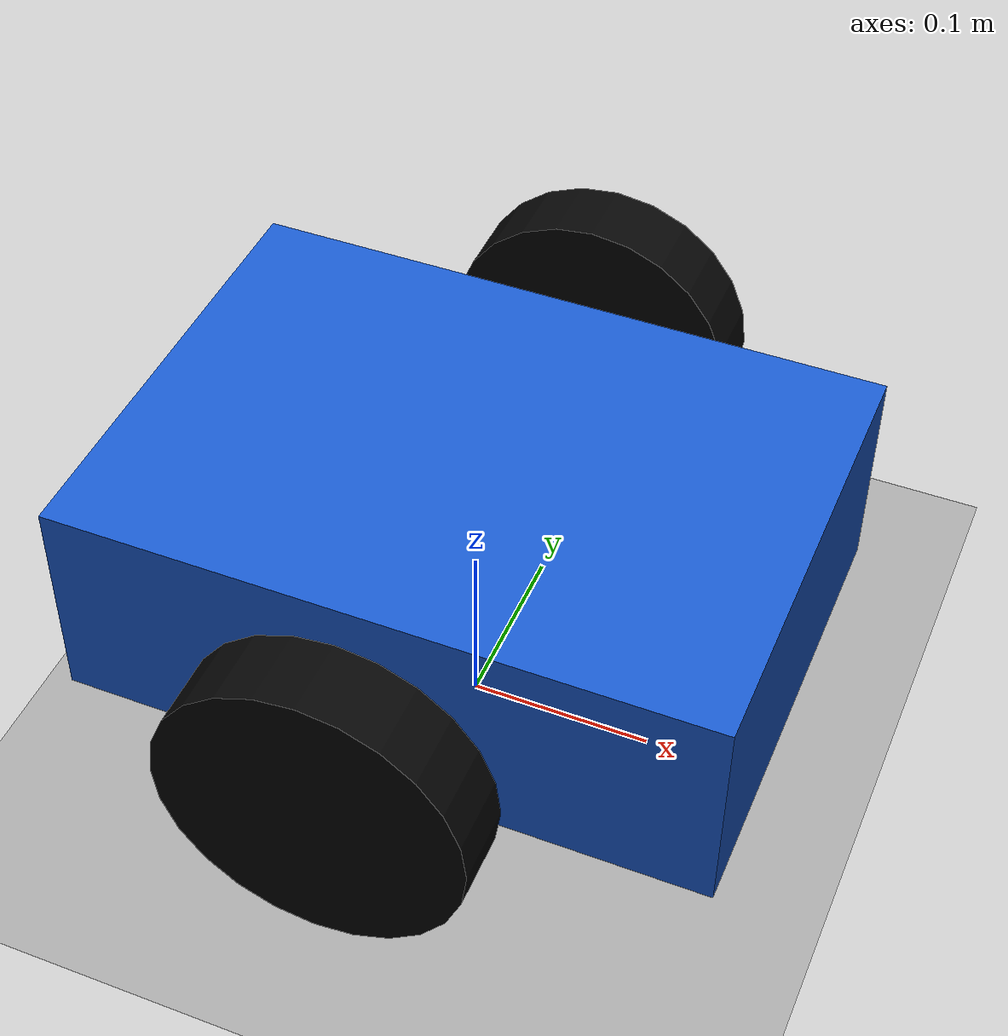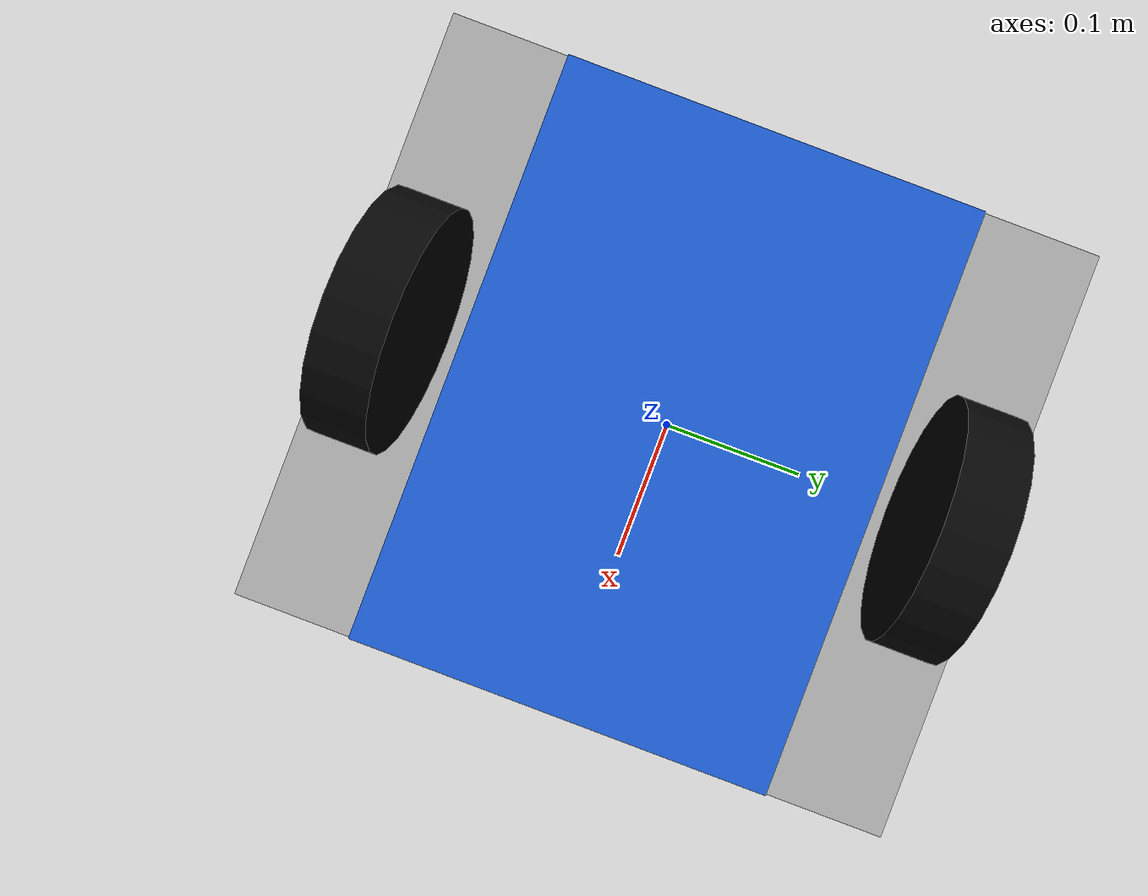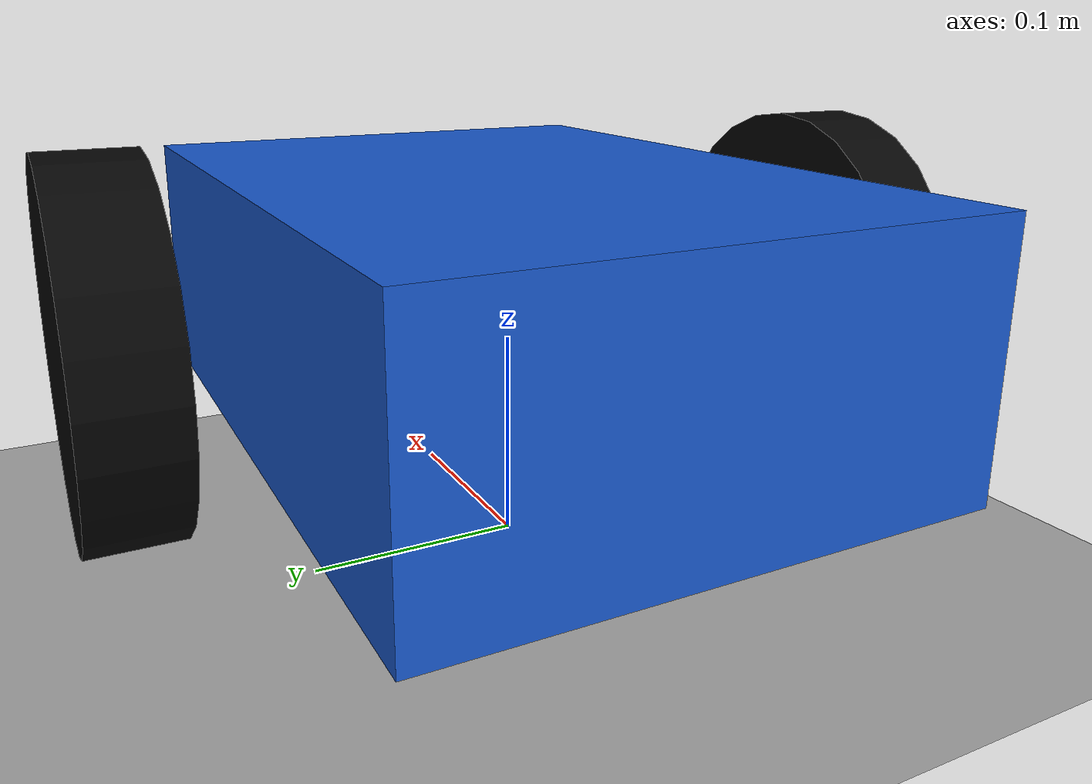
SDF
<?xml version="1.0"?>
<sdf version="1.9">
  <world name="sim3d_minimal_world">
    <physics name="1ms" type="ignored">
      <max_step_size>0.001</max_step_size>
      <real_time_factor>1.0</real_time_factor>
    </physics>

    <plugin
      filename="gz-sim-physics-system"
      name="gz::sim::systems::Physics">
    </plugin>
    <plugin
      filename="gz-sim-user-commands-system"
      name="gz::sim::systems::UserCommands">
    </plugin>
    <plugin
      filename="gz-sim-scene-broadcaster-system"
      name="gz::sim::systems::SceneBroadcaster">
    </plugin>

    <light name="sun" type="directional">
      <cast_shadows>true</cast_shadows>
      <pose>0 0 10 0 0 0</pose>
      <diffuse>0.8 0.8 0.8 1</diffuse>
      <specular>0.2 0.2 0.2 1</specular>
      <attenuation>
        <range>1000</range>
        <constant>0.9</constant>
        <linear>0.01</linear>
        <quadratic>0.001</quadratic>
      </attenuation>
      <direction>-0.5 0.1 -0.9</direction>
    </light>

    <model name="ground_plane">
      <static>true</static>
      <link name="link">
        <collision name="collision">
          <geometry>
            <plane>
              <normal>0 0 1</normal>
              <size>100 100</size>
            </plane>
          </geometry>
        </collision>
        <visual name="visual">
          <geometry>
            <plane>
              <normal>0 0 1</normal>
              <size>100 100</size>
            </plane>
          </geometry>
          <material>
            <ambient>0.65 0.65 0.65 1</ambient>
            <diffuse>0.65 0.65 0.65 1</diffuse>
          </material>
        </visual>
      </link>
    </model>

    <model name="minimal_diff_drive">
      <pose>0 0 0.12 0 0 0</pose>

      <link name="base_link">
        <inertial>
          <mass>1.0</mass>
          <inertia>
            <ixx>0.02</ixx>
            <iyy>0.02</iyy>
            <izz>0.02</izz>
            <ixy>0</ixy>
            <ixz>0</ixz>
            <iyz>0</iyz>
          </inertia>
        </inertial>
        <collision name="base_collision">
          <geometry>
            <box>
              <size>0.35 0.25 0.12</size>
            </box>
          </geometry>
        </collision>
        <visual name="base_visual">
          <geometry>
            <box>
              <size>0.35 0.25 0.12</size>
            </box>
          </geometry>
          <material>
            <ambient>0.1 0.35 0.8 1</ambient>
            <diffuse>0.1 0.35 0.8 1</diffuse>
          </material>
        </visual>
      </link>

      <link name="left_wheel">
        <pose>0 0.18 0 1.57079632679 0 0</pose>
        <inertial>
          <mass>0.1</mass>
          <inertia>
            <ixx>0.0002</ixx>
            <iyy>0.0002</iyy>
            <izz>0.0002</izz>
            <ixy>0</ixy>
            <ixz>0</ixz>
            <iyz>0</iyz>
          </inertia>
        </inertial>
        <collision name="collision">
          <geometry>
            <cylinder>
              <radius>0.08</radius>
              <length>0.04</length>
            </cylinder>
          </geometry>
        </collision>
        <visual name="visual">
          <geometry>
            <cylinder>
              <radius>0.08</radius>
              <length>0.04</length>
            </cylinder>
          </geometry>
          <material>
            <ambient>0.02 0.02 0.02 1</ambient>
            <diffuse>0.02 0.02 0.02 1</diffuse>
          </material>
        </visual>
      </link>

      <link name="right_wheel">
        <pose>0 -0.18 0 1.57079632679 0 0</pose>
        <inertial>
          <mass>0.1</mass>
          <inertia>
            <ixx>0.0002</ixx>
            <iyy>0.0002</iyy>
            <izz>0.0002</izz>
            <ixy>0</ixy>
            <ixz>0</ixz>
            <iyz>0</iyz>
          </inertia>
        </inertial>
        <collision name="collision">
          <geometry>
            <cylinder>
              <radius>0.08</radius>
              <length>0.04</length>
            </cylinder>
          </geometry>
        </collision>
        <visual name="visual">
          <geometry>
            <cylinder>
              <radius>0.08</radius>
              <length>0.04</length>
            </cylinder>
          </geometry>
          <material>
            <ambient>0.02 0.02 0.02 1</ambient>
            <diffuse>0.02 0.02 0.02 1</diffuse>
          </material>
        </visual>
      </link>

      <joint name="left_wheel_joint" type="revolute">
        <parent>base_link</parent>
        <child>left_wheel</child>
        <axis>
          <xyz>0 0 1</xyz>
          <limit>
            <lower>-1e16</lower>
            <upper>1e16</upper>
          </limit>
        </axis>
      </joint>

      <joint name="right_wheel_joint" type="revolute">
        <parent>base_link</parent>
        <child>right_wheel</child>
        <axis>
          <xyz>0 0 1</xyz>
          <limit>
            <lower>-1e16</lower>
            <upper>1e16</upper>
          </limit>
        </axis>
      </joint>

      <plugin
        filename="gz-sim-diff-drive-system"
        name="gz::sim::systems::DiffDrive">
        <left_joint>left_wheel_joint</left_joint>
        <right_joint>right_wheel_joint</right_joint>
        <wheel_separation>0.36</wheel_separation>
        <wheel_radius>0.08</wheel_radius>
        <topic>/cmd_vel</topic>
        <odom_topic>/odom</odom_topic>
        <tf_topic>/tf</tf_topic>
        <frame_id>odom</frame_id>
        <child_frame_id>base_link</child_frame_id>
        <odom_publish_frequency>20</odom_publish_frequency>
      </plugin>
    </model>
  </world>
</sdf>
